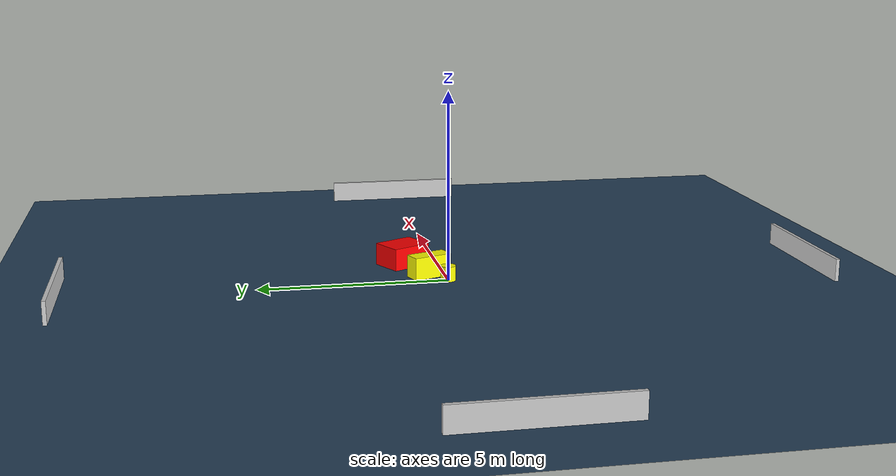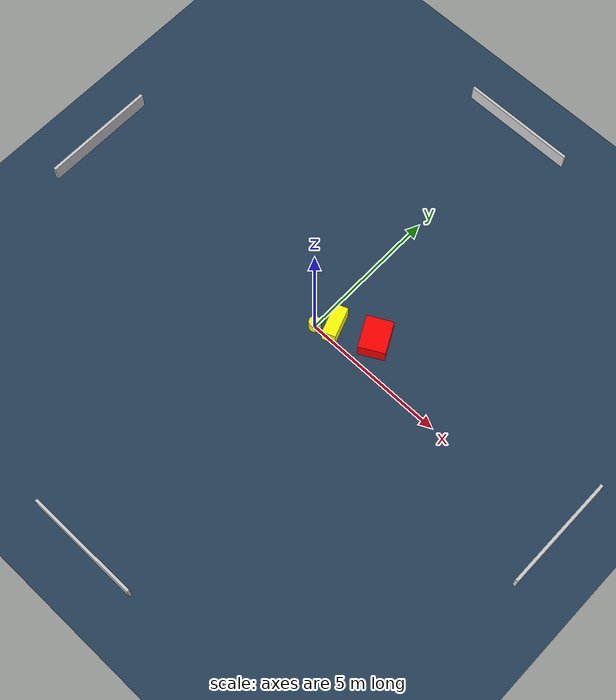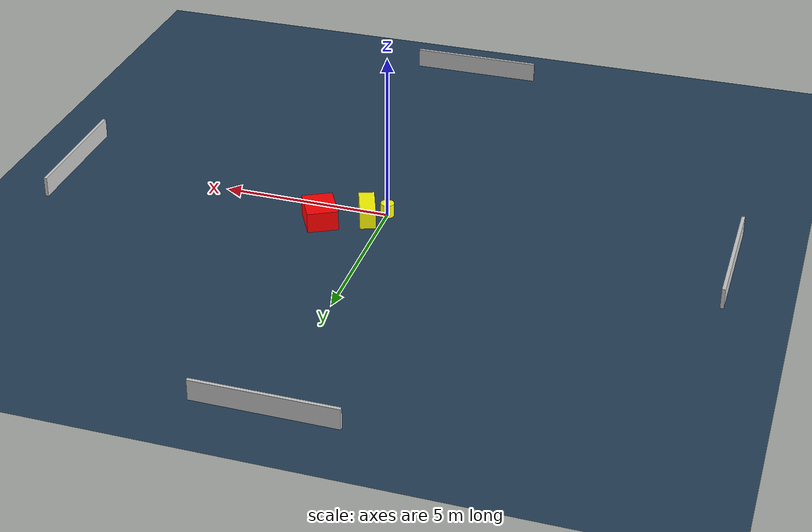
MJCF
<?xml version="1.0" ?>
<mujoco model="generated_environment">
  <option timestep="0.01" integrator="RK4" cone="elliptic"/>
  <default>
    <geom density="1"/>
  </default>
  <asset>
    <texture builtin="gradient" height="3072" name="skybox" rgb1="0.3 0.5 0.7" rgb2="0 0 0" type="skybox" width="512"/>
    <texture builtin="checker" height="300" name="groundplane" rgb1="0.2 0.3 0.4" rgb2="0.1 0.2 0.3" type="2d" width="300"/>
    <material name="groundplane" reflectance="0.2" texrepeat="5 5" texture="groundplane"/>
  </asset>
  <worldbody>
    <light dir="0 0 -1" directional="true" pos="0 0 1.5"/>
    <geom condim="3" friction="0.5 0.005 0.001" material="groundplane" name="floor" pos="0 0 0" size="0 0 0.05" type="plane"/>
    <body name="walls">
      <geom name="wall_1" condim="4" pos="-10.0 0.0 0.3" rgba="0.800000011920929 0.800000011920929 0.800000011920929 1.0" size="0.05 2.0 0.3" type="box"/>
      <geom name="wall_2" condim="4" pos="10.0 0.0 0.3" rgba="0.800000011920929 0.800000011920929 0.800000011920929 1.0" size="0.05 2.0 0.3" type="box"/>
      <geom name="wall_3" condim="4" pos="0.0 -10.0 0.3" rgba="0.800000011920929 0.800000011920929 0.800000011920929 1.0" size="2.0 0.05 0.3" type="box"/>
      <geom name="wall_4" condim="4" pos="0.0 10.0 0.3" rgba="0.800000011920929 0.800000011920929 0.800000011920929 1.0" size="2.0 0.05 0.3" type="box"/>
    </body>
    <body name="robot">
      <joint name="joint_x" type="slide" pos="0 0 0" axis="1 0 0"/>
      <joint name="joint_y" type="slide" pos="0 0 0" axis="0 1 0"/>
      <geom name="robot" type="cylinder" pos="0.0 0.0 0.2" size="0.2 0.2 0.0" mass="5.0" friction="1.0 0.005 0.0001" condim="4" rgba="1.0 1.0 0.0 1.0"/>
    </body>
    <body name="obstacle_1_movable">
      <geom name="obstacle_1_movable" condim="4" pos="0.4861406876288506 0.4199809011258226 0.3" euler="0 0 110.24490848025675" friction="0.0 0.005 0.001" rgba="1.0 1.0 0.0 1.0" size="0.5345742276081603 0.23111829466410397 0.3" type="box" mass="0.1"/>
      <joint type="free"/>
    </body>
    <body name="obstacle_2_static">
      <geom name="obstacle_2_static" condim="4" pos="1.7515574420009734 0.9442655596783432 0.3" euler="0 0 118.02665235985836" friction="0.0 0.005 0.001" rgba="1.0 0.0 0.0 1.0" size="0.5608439285667612 0.45311327865830714 0.3" type="box"/>
    </body>
  </worldbody>
  <actuator>
    <motor name="actuator_x" joint="joint_x" gear="1" ctrlrange="-1 1"/>
    <motor name="actuator_y" joint="joint_y" gear="1" ctrlrange="-1 1"/>
  </actuator>
</mujoco>
